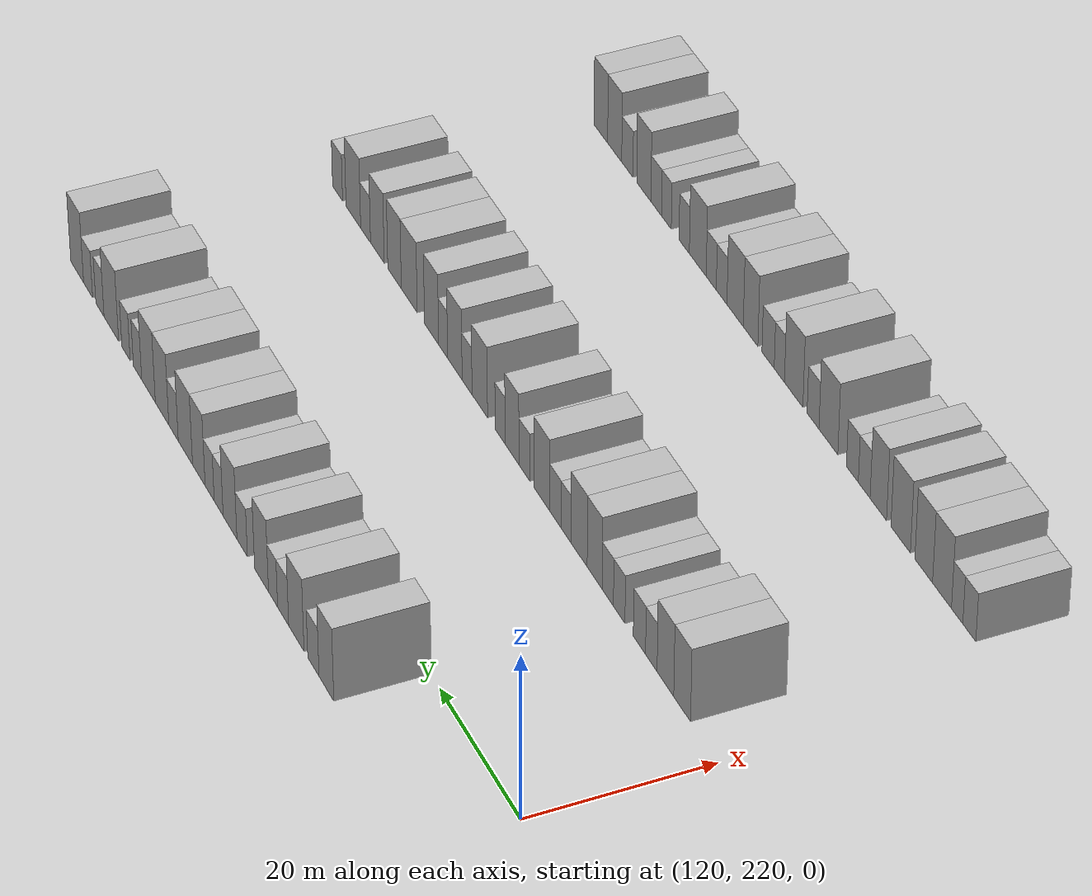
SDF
<sdf version="1.6">
 <world name="default">
  <model name="building_848">
   <static>1</static>
   <pose>115.0000 244.2207 0 0.000000 0.000000 0.000000</pose>
   <link name="link">
    <pose>0 0 4.50 0 0 0</pose>
    <collision name="collision"><geometry><box><size>10.0000 3.8782 9.0000</size></box></geometry></collision>
    <visual name="visual">
     <cast_shadows>0</cast_shadows>
     <geometry><box><size>10.0000 3.8782 9.0000</size></box></geometry>
     <material>
      <script>
       <uri>model://HANNAS_wall/materials/scripts</uri>
       <uri>model://HANNAS_wall/materials/textures</uri>
       <name>vrc/HANNAS_wall</name>
      </script>
     </material>
    </visual>
   </link>
  </model>
  <model name="building_849">
   <static>1</static>
   <pose>115.0000 247.6461 0 0.000000 0.000000 0.000000</pose>
   <link name="link">
    <pose>0 0 3.00 0 0 0</pose>
    <collision name="collision"><geometry><box><size>10.0000 2.9726 6.0000</size></box></geometry></collision>
    <visual name="visual">
     <cast_shadows>0</cast_shadows>
     <geometry><box><size>10.0000 2.9726 6.0000</size></box></geometry>
     <material>
      <script>
       <uri>model://HANNAS_wall/materials/scripts</uri>
       <uri>model://HANNAS_wall/materials/textures</uri>
       <name>vrc/HANNAS_wall</name>
      </script>
     </material>
    </visual>
   </link>
  </model>
  <model name="building_850">
   <static>1</static>
   <pose>115.0000 252.1877 0 0.000000 0.000000 0.000000</pose>
   <link name="link">
    <pose>0 0 4.50 0 0 0</pose>
    <collision name="collision"><geometry><box><size>10.0000 4.1106 9.0000</size></box></geometry></collision>
    <visual name="visual">
     <cast_shadows>0</cast_shadows>
     <geometry><box><size>10.0000 4.1106 9.0000</size></box></geometry>
     <material>
      <script>
       <uri>model://HANNAS_wall/materials/scripts</uri>
       <uri>model://HANNAS_wall/materials/textures</uri>
       <name>vrc/HANNAS_wall</name>
      </script>
     </material>
    </visual>
   </link>
  </model>
  <model name="building_851">
   <static>1</static>
   <pose>115.0000 255.7371 0 0.000000 0.000000 0.000000</pose>
   <link name="link">
    <pose>0 0 3.00 0 0 0</pose>
    <collision name="collision"><geometry><box><size>10.0000 2.9881 6.0000</size></box></geometry></collision>
    <visual name="visual">
     <cast_shadows>0</cast_shadows>
     <geometry><box><size>10.0000 2.9881 6.0000</size></box></geometry>
     <material>
      <script>
       <uri>model://HANNAS_wall/materials/scripts</uri>
       <uri>model://HANNAS_wall/materials/textures</uri>
       <name>vrc/HANNAS_wall</name>
      </script>
     </material>
    </visual>
   </link>
  </model>
  <model name="building_852">
   <static>1</static>
   <pose>115.0000 258.4723 0 0.000000 0.000000 0.000000</pose>
   <link name="link">
    <pose>0 0 3.00 0 0 0</pose>
    <collision name="collision"><geometry><box><size>10.0000 2.4824 6.0000</size></box></geometry></collision>
    <visual name="visual">
     <cast_shadows>0</cast_shadows>
     <geometry><box><size>10.0000 2.4824 6.0000</size></box></geometry>
     <material>
      <script>
       <uri>model://HANNAS_wall/materials/scripts</uri>
       <uri>model://HANNAS_wall/materials/textures</uri>
       <name>vrc/HANNAS_wall</name>
      </script>
     </material>
    </visual>
   </link>
  </model>
  <model name="building_853">
   <static>1</static>
   <pose>115.0000 261.6163 0 0.000000 0.000000 0.000000</pose>
   <link name="link">
    <pose>0 0 4.50 0 0 0</pose>
    <collision name="collision"><geometry><box><size>10.0000 3.8056 9.0000</size></box></geometry></collision>
    <visual name="visual">
     <cast_shadows>0</cast_shadows>
     <geometry><box><size>10.0000 3.8056 9.0000</size></box></geometry>
     <material>
      <script>
       <uri>model://HANNAS_wall/materials/scripts</uri>
       <uri>model://HANNAS_wall/materials/textures</uri>
       <name>vrc/HANNAS_wall</name>
      </script>
     </material>
    </visual>
   </link>
  </model>
  <model name="building_854">
   <static>1</static>
   <pose>115.0000 266.9778 0 0.000000 0.000000 0.000000</pose>
   <link name="link">
    <pose>0 0 3.00 0 0 0</pose>
    <collision name="collision"><geometry><box><size>10.0000 2.9174 6.0000</size></box></geometry></collision>
    <visual name="visual">
     <cast_shadows>0</cast_shadows>
     <geometry><box><size>10.0000 2.9174 6.0000</size></box></geometry>
     <material>
      <script>
       <uri>model://HANNAS_wall/materials/scripts</uri>
       <uri>model://HANNAS_wall/materials/textures</uri>
       <name>vrc/HANNAS_wall</name>
      </script>
     </material>
    </visual>
   </link>
  </model>
  <model name="building_855">
   <static>1</static>
   <pose>115.0000 270.3739 0 0.000000 0.000000 0.000000</pose>
   <link name="link">
    <pose>0 0 4.50 0 0 0</pose>
    <collision name="collision"><geometry><box><size>10.0000 3.8749 9.0000</size></box></geometry></collision>
    <visual name="visual">
     <cast_shadows>0</cast_shadows>
     <geometry><box><size>10.0000 3.8749 9.0000</size></box></geometry>
     <material>
      <script>
       <uri>model://HANNAS_wall/materials/scripts</uri>
       <uri>model://HANNAS_wall/materials/textures</uri>
       <name>vrc/HANNAS_wall</name>
      </script>
     </material>
    </visual>
   </link>
  </model>
  <model name="building_856">
   <static>1</static>
   <pose>115.0000 273.5692 0 0.000000 0.000000 0.000000</pose>
   <link name="link">
    <pose>0 0 3.00 0 0 0</pose>
    <collision name="collision"><geometry><box><size>10.0000 2.5157 6.0000</size></box></geometry></collision>
    <visual name="visual">
     <cast_shadows>0</cast_shadows>
     <geometry><box><size>10.0000 2.5157 6.0000</size></box></geometry>
     <material>
      <script>
       <uri>model://HANNAS_wall/materials/scripts</uri>
       <uri>model://HANNAS_wall/materials/textures</uri>
       <name>vrc/HANNAS_wall</name>
      </script>
     </material>
    </visual>
   </link>
  </model>
  <model name="building_857">
   <static>1</static>
   <pose>115.0000 276.1276 0 0.000000 0.000000 0.000000</pose>
   <link name="link">
    <pose>0 0 3.00 0 0 0</pose>
    <collision name="collision"><geometry><box><size>10.0000 2.6011 6.0000</size></box></geometry></collision>
    <visual name="visual">
     <cast_shadows>0</cast_shadows>
     <geometry><box><size>10.0000 2.6011 6.0000</size></box></geometry>
     <material>
      <script>
       <uri>model://HANNAS_wall/materials/scripts</uri>
       <uri>model://HANNAS_wall/materials/textures</uri>
       <name>vrc/HANNAS_wall</name>
      </script>
     </material>
    </visual>
   </link>
  </model>
  <model name="building_858">
   <static>1</static>
   <pose>115.0000 279.2333 0 0.000000 0.000000 0.000000</pose>
   <link name="link">
    <pose>0 0 4.50 0 0 0</pose>
    <collision name="collision"><geometry><box><size>10.0000 3.6104 9.0000</size></box></geometry></collision>
    <visual name="visual">
     <cast_shadows>0</cast_shadows>
     <geometry><box><size>10.0000 3.6104 9.0000</size></box></geometry>
     <material>
      <script>
       <uri>model://HANNAS_wall/materials/scripts</uri>
       <uri>model://HANNAS_wall/materials/textures</uri>
       <name>vrc/HANNAS_wall</name>
      </script>
     </material>
    </visual>
   </link>
  </model>
  <model name="building_859">
   <static>1</static>
   <pose>115.0000 283.1141 0 0.000000 0.000000 0.000000</pose>
   <link name="link">
    <pose>0 0 4.50 0 0 0</pose>
    <collision name="collision"><geometry><box><size>10.0000 4.1512 9.0000</size></box></geometry></collision>
    <visual name="visual">
     <cast_shadows>0</cast_shadows>
     <geometry><box><size>10.0000 4.1512 9.0000</size></box></geometry>
     <material>
      <script>
       <uri>model://HANNAS_wall/materials/scripts</uri>
       <uri>model://HANNAS_wall/materials/textures</uri>
       <name>vrc/HANNAS_wall</name>
      </script>
     </material>
    </visual>
   </link>
  </model>
  <model name="building_860">
   <static>1</static>
   <pose>115.0000 286.5682 0 0.000000 0.000000 0.000000</pose>
   <link name="link">
    <pose>0 0 3.00 0 0 0</pose>
    <collision name="collision"><geometry><box><size>10.0000 2.7570 6.0000</size></box></geometry></collision>
    <visual name="visual">
     <cast_shadows>0</cast_shadows>
     <geometry><box><size>10.0000 2.7570 6.0000</size></box></geometry>
     <material>
      <script>
       <uri>model://HANNAS_wall/materials/scripts</uri>
       <uri>model://HANNAS_wall/materials/textures</uri>
       <name>vrc/HANNAS_wall</name>
      </script>
     </material>
    </visual>
   </link>
  </model>
  <model name="building_861">
   <static>1</static>
   <pose>115.0000 289.9339 0 0.000000 0.000000 0.000000</pose>
   <link name="link">
    <pose>0 0 4.50 0 0 0</pose>
    <collision name="collision"><geometry><box><size>10.0000 3.9745 9.0000</size></box></geometry></collision>
    <visual name="visual">
     <cast_shadows>0</cast_shadows>
     <geometry><box><size>10.0000 3.9745 9.0000</size></box></geometry>
     <material>
      <script>
       <uri>model://HANNAS_wall/materials/scripts</uri>
       <uri>model://HANNAS_wall/materials/textures</uri>
       <name>vrc/HANNAS_wall</name>
      </script>
     </material>
    </visual>
   </link>
  </model>
  <model name="building_862">
   <static>1</static>
   <pose>115.0000 293.9550 0 0.000000 0.000000 0.000000</pose>
   <link name="link">
    <pose>0 0 4.50 0 0 0</pose>
    <collision name="collision"><geometry><box><size>10.0000 4.0678 9.0000</size></box></geometry></collision>
    <visual name="visual">
     <cast_shadows>0</cast_shadows>
     <geometry><box><size>10.0000 4.0678 9.0000</size></box></geometry>
     <material>
      <script>
       <uri>model://HANNAS_wall/materials/scripts</uri>
       <uri>model://HANNAS_wall/materials/textures</uri>
       <name>vrc/HANNAS_wall</name>
      </script>
     </material>
    </visual>
   </link>
  </model>
  <model name="building_863">
   <static>1</static>
   <pose>115.0000 297.2234 0 0.000000 0.000000 0.000000</pose>
   <link name="link">
    <pose>0 0 3.00 0 0 0</pose>
    <collision name="collision"><geometry><box><size>10.0000 2.4688 6.0000</size></box></geometry></collision>
    <visual name="visual">
     <cast_shadows>0</cast_shadows>
     <geometry><box><size>10.0000 2.4688 6.0000</size></box></geometry>
     <material>
      <script>
       <uri>model://HANNAS_wall/materials/scripts</uri>
       <uri>model://HANNAS_wall/materials/textures</uri>
       <name>vrc/HANNAS_wall</name>
      </script>
     </material>
    </visual>
   </link>
  </model>
  <model name="building_864">
   <static>1</static>
   <pose>115.0000 300.7084 0 0.000000 0.000000 0.000000</pose>
   <link name="link">
    <pose>0 0 3.00 0 0 0</pose>
    <collision name="collision"><geometry><box><size>10.0000 2.5013 6.0000</size></box></geometry></collision>
    <visual name="visual">
     <cast_shadows>0</cast_shadows>
     <geometry><box><size>10.0000 2.5013 6.0000</size></box></geometry>
     <material>
      <script>
       <uri>model://HANNAS_wall/materials/scripts</uri>
       <uri>model://HANNAS_wall/materials/textures</uri>
       <name>vrc/HANNAS_wall</name>
      </script>
     </material>
    </visual>
   </link>
  </model>
  <model name="building_865">
   <static>1</static>
   <pose>115.0000 305.1834 0 0.000000 0.000000 0.000000</pose>
   <link name="link">
    <pose>0 0 4.50 0 0 0</pose>
    <collision name="collision"><geometry><box><size>10.0000 4.4486 9.0000</size></box></geometry></collision>
    <visual name="visual">
     <cast_shadows>0</cast_shadows>
     <geometry><box><size>10.0000 4.4486 9.0000</size></box></geometry>
     <material>
      <script>
       <uri>model://HANNAS_wall/materials/scripts</uri>
       <uri>model://HANNAS_wall/materials/textures</uri>
       <name>vrc/HANNAS_wall</name>
      </script>
     </material>
    </visual>
   </link>
  </model>
  <model name="building_866">
   <static>1</static>
   <pose>115.0000 308.6751 0 0.000000 0.000000 0.000000</pose>
   <link name="link">
    <pose>0 0 3.00 0 0 0</pose>
    <collision name="collision"><geometry><box><size>10.0000 2.5350 6.0000</size></box></geometry></collision>
    <visual name="visual">
     <cast_shadows>0</cast_shadows>
     <geometry><box><size>10.0000 2.5350 6.0000</size></box></geometry>
     <material>
      <script>
       <uri>model://HANNAS_wall/materials/scripts</uri>
       <uri>model://HANNAS_wall/materials/textures</uri>
       <name>vrc/HANNAS_wall</name>
      </script>
     </material>
    </visual>
   </link>
  </model>
  <model name="building_867">
   <static>1</static>
   <pose>115.0000 312.3474 0 0.000000 0.000000 0.000000</pose>
   <link name="link">
    <pose>0 0 3.00 0 0 0</pose>
    <collision name="collision"><geometry><box><size>10.0000 2.8095 6.0000</size></box></geometry></collision>
    <visual name="visual">
     <cast_shadows>0</cast_shadows>
     <geometry><box><size>10.0000 2.8095 6.0000</size></box></geometry>
     <material>
      <script>
       <uri>model://HANNAS_wall/materials/scripts</uri>
       <uri>model://HANNAS_wall/materials/textures</uri>
       <name>vrc/HANNAS_wall</name>
      </script>
     </material>
    </visual>
   </link>
  </model>
  <model name="building_868">
   <static>1</static>
   <pose>115.0000 315.7511 0 0.000000 0.000000 0.000000</pose>
   <link name="link">
    <pose>0 0 4.50 0 0 0</pose>
    <collision name="collision"><geometry><box><size>10.0000 3.9978 9.0000</size></box></geometry></collision>
    <visual name="visual">
     <cast_shadows>0</cast_shadows>
     <geometry><box><size>10.0000 3.9978 9.0000</size></box></geometry>
     <material>
      <script>
       <uri>model://HANNAS_wall/materials/scripts</uri>
       <uri>model://HANNAS_wall/materials/textures</uri>
       <name>vrc/HANNAS_wall</name>
      </script>
     </material>
    </visual>
   </link>
  </model>
  <model name="building_1060">
   <static>1</static>
   <pose>145.0000 228.3017 0 0.000000 0.000000 0.000000</pose>
   <link name="link">
    <pose>0 0 4.50 0 0 0</pose>
    <collision name="collision"><geometry><box><size>10.0000 3.9201 9.0000</size></box></geometry></collision>
    <visual name="visual">
     <cast_shadows>0</cast_shadows>
     <geometry><box><size>10.0000 3.9201 9.0000</size></box></geometry>
     <material>
      <script>
       <uri>model://HANNAS_wall/materials/scripts</uri>
       <uri>model://HANNAS_wall/materials/textures</uri>
       <name>vrc/HANNAS_wall</name>
      </script>
     </material>
    </visual>
   </link>
  </model>
  <model name="building_1061">
   <static>1</static>
   <pose>145.0000 232.2187 0 0.000000 0.000000 0.000000</pose>
   <link name="link">
    <pose>0 0 4.50 0 0 0</pose>
    <collision name="collision"><geometry><box><size>10.0000 3.9140 9.0000</size></box></geometry></collision>
    <visual name="visual">
     <cast_shadows>0</cast_shadows>
     <geometry><box><size>10.0000 3.9140 9.0000</size></box></geometry>
     <material>
      <script>
       <uri>model://HANNAS_wall/materials/scripts</uri>
       <uri>model://HANNAS_wall/materials/textures</uri>
       <name>vrc/HANNAS_wall</name>
      </script>
     </material>
    </visual>
   </link>
  </model>
  <model name="building_1062">
   <static>1</static>
   <pose>145.0000 235.5470 0 0.000000 0.000000 0.000000</pose>
   <link name="link">
    <pose>0 0 3.00 0 0 0</pose>
    <collision name="collision"><geometry><box><size>10.0000 2.7426 6.0000</size></box></geometry></collision>
    <visual name="visual">
     <cast_shadows>0</cast_shadows>
     <geometry><box><size>10.0000 2.7426 6.0000</size></box></geometry>
     <material>
      <script>
       <uri>model://HANNAS_wall/materials/scripts</uri>
       <uri>model://HANNAS_wall/materials/textures</uri>
       <name>vrc/HANNAS_wall</name>
      </script>
     </material>
    </visual>
   </link>
  </model>
  <model name="building_1063">
   <static>1</static>
   <pose>145.0000 238.3834 0 0.000000 0.000000 0.000000</pose>
   <link name="link">
    <pose>0 0 3.00 0 0 0</pose>
    <collision name="collision"><geometry><box><size>10.0000 2.9302 6.0000</size></box></geometry></collision>
    <visual name="visual">
     <cast_shadows>0</cast_shadows>
     <geometry><box><size>10.0000 2.9302 6.0000</size></box></geometry>
     <material>
      <script>
       <uri>model://HANNAS_wall/materials/scripts</uri>
       <uri>model://HANNAS_wall/materials/textures</uri>
       <name>vrc/HANNAS_wall</name>
      </script>
     </material>
    </visual>
   </link>
  </model>
  <model name="building_1064">
   <static>1</static>
   <pose>145.0000 243.2452 0 0.000000 0.000000 0.000000</pose>
   <link name="link">
    <pose>0 0 3.00 0 0 0</pose>
    <collision name="collision"><geometry><box><size>10.0000 2.7933 6.0000</size></box></geometry></collision>
    <visual name="visual">
     <cast_shadows>0</cast_shadows>
     <geometry><box><size>10.0000 2.7933 6.0000</size></box></geometry>
     <material>
      <script>
       <uri>model://HANNAS_wall/materials/scripts</uri>
       <uri>model://HANNAS_wall/materials/textures</uri>
       <name>vrc/HANNAS_wall</name>
      </script>
     </material>
    </visual>
   </link>
  </model>
  <model name="building_1065">
   <static>1</static>
   <pose>145.0000 246.0279 0 0.000000 0.000000 0.000000</pose>
   <link name="link">
    <pose>0 0 3.00 0 0 0</pose>
    <collision name="collision"><geometry><box><size>10.0000 2.7721 6.0000</size></box></geometry></collision>
    <visual name="visual">
     <cast_shadows>0</cast_shadows>
     <geometry><box><size>10.0000 2.7721 6.0000</size></box></geometry>
     <material>
      <script>
       <uri>model://HANNAS_wall/materials/scripts</uri>
       <uri>model://HANNAS_wall/materials/textures</uri>
       <name>vrc/HANNAS_wall</name>
      </script>
     </material>
    </visual>
   </link>
  </model>
  <model name="building_1066">
   <static>1</static>
   <pose>145.0000 249.2485 0 0.000000 0.000000 0.000000</pose>
   <link name="link">
    <pose>0 0 4.50 0 0 0</pose>
    <collision name="collision"><geometry><box><size>10.0000 3.6691 9.0000</size></box></geometry></collision>
    <visual name="visual">
     <cast_shadows>0</cast_shadows>
     <geometry><box><size>10.0000 3.6691 9.0000</size></box></geometry>
     <material>
      <script>
       <uri>model://HANNAS_wall/materials/scripts</uri>
       <uri>model://HANNAS_wall/materials/textures</uri>
       <name>vrc/HANNAS_wall</name>
      </script>
     </material>
    </visual>
   </link>
  </model>
  <model name="building_1067">
   <static>1</static>
   <pose>145.0000 253.0769 0 0.000000 0.000000 0.000000</pose>
   <link name="link">
    <pose>0 0 4.50 0 0 0</pose>
    <collision name="collision"><geometry><box><size>10.0000 3.9878 9.0000</size></box></geometry></collision>
    <visual name="visual">
     <cast_shadows>0</cast_shadows>
     <geometry><box><size>10.0000 3.9878 9.0000</size></box></geometry>
     <material>
      <script>
       <uri>model://HANNAS_wall/materials/scripts</uri>
       <uri>model://HANNAS_wall/materials/textures</uri>
       <name>vrc/HANNAS_wall</name>
      </script>
     </material>
    </visual>
   </link>
  </model>
  <model name="building_1068">
   <static>1</static>
   <pose>145.0000 256.2872 0 0.000000 0.000000 0.000000</pose>
   <link name="link">
    <pose>0 0 3.00 0 0 0</pose>
    <collision name="collision"><geometry><box><size>10.0000 2.4328 6.0000</size></box></geometry></collision>
    <visual name="visual">
     <cast_shadows>0</cast_shadows>
     <geometry><box><size>10.0000 2.4328 6.0000</size></box></geometry>
     <material>
      <script>
       <uri>model://HANNAS_wall/materials/scripts</uri>
       <uri>model://HANNAS_wall/materials/textures</uri>
       <name>vrc/HANNAS_wall</name>
      </script>
     </material>
    </visual>
   </link>
  </model>
  <model name="building_1069">
   <static>1</static>
   <pose>145.0000 258.9683 0 0.000000 0.000000 0.000000</pose>
   <link name="link">
    <pose>0 0 3.00 0 0 0</pose>
    <collision name="collision"><geometry><box><size>10.0000 2.9296 6.0000</size></box></geometry></collision>
    <visual name="visual">
     <cast_shadows>0</cast_shadows>
     <geometry><box><size>10.0000 2.9296 6.0000</size></box></geometry>
     <material>
      <script>
       <uri>model://HANNAS_wall/materials/scripts</uri>
       <uri>model://HANNAS_wall/materials/textures</uri>
       <name>vrc/HANNAS_wall</name>
      </script>
     </material>
    </visual>
   </link>
  </model>
  <model name="building_1070">
   <static>1</static>
   <pose>145.0000 262.4605 0 0.000000 0.000000 0.000000</pose>
   <link name="link">
    <pose>0 0 4.50 0 0 0</pose>
    <collision name="collision"><geometry><box><size>10.0000 4.0547 9.0000</size></box></geometry></collision>
    <visual name="visual">
     <cast_shadows>0</cast_shadows>
     <geometry><box><size>10.0000 4.0547 9.0000</size></box></geometry>
     <material>
      <script>
       <uri>model://HANNAS_wall/materials/scripts</uri>
       <uri>model://HANNAS_wall/materials/textures</uri>
       <name>vrc/HANNAS_wall</name>
      </script>
     </material>
    </visual>
   </link>
  </model>
  <model name="building_1071">
   <static>1</static>
   <pose>145.0000 266.8948 0 0.000000 0.000000 0.000000</pose>
   <link name="link">
    <pose>0 0 3.00 0 0 0</pose>
    <collision name="collision"><geometry><box><size>10.0000 2.8139 6.0000</size></box></geometry></collision>
    <visual name="visual">
     <cast_shadows>0</cast_shadows>
     <geometry><box><size>10.0000 2.8139 6.0000</size></box></geometry>
     <material>
      <script>
       <uri>model://HANNAS_wall/materials/scripts</uri>
       <uri>model://HANNAS_wall/materials/textures</uri>
       <name>vrc/HANNAS_wall</name>
      </script>
     </material>
    </visual>
   </link>
  </model>
  <model name="building_1072">
   <static>1</static>
   <pose>145.0000 270.1035 0 0.000000 0.000000 0.000000</pose>
   <link name="link">
    <pose>0 0 4.50 0 0 0</pose>
    <collision name="collision"><geometry><box><size>10.0000 3.6037 9.0000</size></box></geometry></collision>
    <visual name="visual">
     <cast_shadows>0</cast_shadows>
     <geometry><box><size>10.0000 3.6037 9.0000</size></box></geometry>
     <material>
      <script>
       <uri>model://HANNAS_wall/materials/scripts</uri>
       <uri>model://HANNAS_wall/materials/textures</uri>
       <name>vrc/HANNAS_wall</name>
      </script>
     </material>
    </visual>
   </link>
  </model>
  <model name="building_1073">
   <static>1</static>
   <pose>145.0000 273.2037 0 0.000000 0.000000 0.000000</pose>
   <link name="link">
    <pose>0 0 3.00 0 0 0</pose>
    <collision name="collision"><geometry><box><size>10.0000 2.5967 6.0000</size></box></geometry></collision>
    <visual name="visual">
     <cast_shadows>0</cast_shadows>
     <geometry><box><size>10.0000 2.5967 6.0000</size></box></geometry>
     <material>
      <script>
       <uri>model://HANNAS_wall/materials/scripts</uri>
       <uri>model://HANNAS_wall/materials/textures</uri>
       <name>vrc/HANNAS_wall</name>
      </script>
     </material>
    </visual>
   </link>
  </model>
  <model name="building_1074">
   <static>1</static>
   <pose>145.0000 278.5564 0 0.000000 0.000000 0.000000</pose>
   <link name="link">
    <pose>0 0 4.50 0 0 0</pose>
    <collision name="collision"><geometry><box><size>10.0000 4.1087 9.0000</size></box></geometry></collision>
    <visual name="visual">
     <cast_shadows>0</cast_shadows>
     <geometry><box><size>10.0000 4.1087 9.0000</size></box></geometry>
     <material>
      <script>
       <uri>model://HANNAS_wall/materials/scripts</uri>
       <uri>model://HANNAS_wall/materials/textures</uri>
       <name>vrc/HANNAS_wall</name>
      </script>
     </material>
    </visual>
   </link>
  </model>
  <model name="building_1075">
   <static>1</static>
   <pose>145.0000 281.9324 0 0.000000 0.000000 0.000000</pose>
   <link name="link">
    <pose>0 0 3.00 0 0 0</pose>
    <collision name="collision"><geometry><box><size>10.0000 2.6433 6.0000</size></box></geometry></collision>
    <visual name="visual">
     <cast_shadows>0</cast_shadows>
     <geometry><box><size>10.0000 2.6433 6.0000</size></box></geometry>
     <material>
      <script>
       <uri>model://HANNAS_wall/materials/scripts</uri>
       <uri>model://HANNAS_wall/materials/textures</uri>
       <name>vrc/HANNAS_wall</name>
      </script>
     </material>
    </visual>
   </link>
  </model>
  <model name="building_1076">
   <static>1</static>
   <pose>145.0000 285.2062 0 0.000000 0.000000 0.000000</pose>
   <link name="link">
    <pose>0 0 4.50 0 0 0</pose>
    <collision name="collision"><geometry><box><size>10.0000 3.9044 9.0000</size></box></geometry></collision>
    <visual name="visual">
     <cast_shadows>0</cast_shadows>
     <geometry><box><size>10.0000 3.9044 9.0000</size></box></geometry>
     <material>
      <script>
       <uri>model://HANNAS_wall/materials/scripts</uri>
       <uri>model://HANNAS_wall/materials/textures</uri>
       <name>vrc/HANNAS_wall</name>
      </script>
     </material>
    </visual>
   </link>
  </model>
  <model name="building_1077">
   <static>1</static>
   <pose>145.0000 288.3752 0 0.000000 0.000000 0.000000</pose>
   <link name="link">
    <pose>0 0 3.00 0 0 0</pose>
    <collision name="collision"><geometry><box><size>10.0000 2.4335 6.0000</size></box></geometry></collision>
    <visual name="visual">
     <cast_shadows>0</cast_shadows>
     <geometry><box><size>10.0000 2.4335 6.0000</size></box></geometry>
     <material>
      <script>
       <uri>model://HANNAS_wall/materials/scripts</uri>
       <uri>model://HANNAS_wall/materials/textures</uri>
       <name>vrc/HANNAS_wall</name>
      </script>
     </material>
    </visual>
   </link>
  </model>
  <model name="building_1078">
   <static>1</static>
   <pose>145.0000 291.5195 0 0.000000 0.000000 0.000000</pose>
   <link name="link">
    <pose>0 0 4.50 0 0 0</pose>
    <collision name="collision"><geometry><box><size>10.0000 3.8552 9.0000</size></box></geometry></collision>
    <visual name="visual">
     <cast_shadows>0</cast_shadows>
     <geometry><box><size>10.0000 3.8552 9.0000</size></box></geometry>
     <material>
      <script>
       <uri>model://HANNAS_wall/materials/scripts</uri>
       <uri>model://HANNAS_wall/materials/textures</uri>
       <name>vrc/HANNAS_wall</name>
      </script>
     </material>
    </visual>
   </link>
  </model>
  <model name="building_1079">
   <static>1</static>
   <pose>145.0000 297.6555 0 0.000000 0.000000 0.000000</pose>
   <link name="link">
    <pose>0 0 4.50 0 0 0</pose>
    <collision name="collision"><geometry><box><size>10.0000 4.4167 9.0000</size></box></geometry></collision>
    <visual name="visual">
     <cast_shadows>0</cast_shadows>
     <geometry><box><size>10.0000 4.4167 9.0000</size></box></geometry>
     <material>
      <script>
       <uri>model://HANNAS_wall/materials/scripts</uri>
       <uri>model://HANNAS_wall/materials/textures</uri>
       <name>vrc/HANNAS_wall</name>
      </script>
     </material>
    </visual>
   </link>
  </model>
  <model name="building_1080">
   <static>1</static>
   <pose>145.0000 301.7551 0 0.000000 0.000000 0.000000</pose>
   <link name="link">
    <pose>0 0 4.50 0 0 0</pose>
    <collision name="collision"><geometry><box><size>10.0000 3.7826 9.0000</size></box></geometry></collision>
    <visual name="visual">
     <cast_shadows>0</cast_shadows>
     <geometry><box><size>10.0000 3.7826 9.0000</size></box></geometry>
     <material>
      <script>
       <uri>model://HANNAS_wall/materials/scripts</uri>
       <uri>model://HANNAS_wall/materials/textures</uri>
       <name>vrc/HANNAS_wall</name>
      </script>
     </material>
    </visual>
   </link>
  </model>
  <model name="building_1081">
   <static>1</static>
   <pose>145.0000 306.5948 0 0.000000 0.000000 0.000000</pose>
   <link name="link">
    <pose>0 0 4.50 0 0 0</pose>
    <collision name="collision"><geometry><box><size>10.0000 3.8967 9.0000</size></box></geometry></collision>
    <visual name="visual">
     <cast_shadows>0</cast_shadows>
     <geometry><box><size>10.0000 3.8967 9.0000</size></box></geometry>
     <material>
      <script>
       <uri>model://HANNAS_wall/materials/scripts</uri>
       <uri>model://HANNAS_wall/materials/textures</uri>
       <name>vrc/HANNAS_wall</name>
      </script>
     </material>
    </visual>
   </link>
  </model>
  <model name="building_1082">
   <static>1</static>
   <pose>145.0000 309.9485 0 0.000000 0.000000 0.000000</pose>
   <link name="link">
    <pose>0 0 3.00 0 0 0</pose>
    <collision name="collision"><geometry><box><size>10.0000 2.8108 6.0000</size></box></geometry></collision>
    <visual name="visual">
     <cast_shadows>0</cast_shadows>
     <geometry><box><size>10.0000 2.8108 6.0000</size></box></geometry>
     <material>
      <script>
       <uri>model://HANNAS_wall/materials/scripts</uri>
       <uri>model://HANNAS_wall/materials/textures</uri>
       <name>vrc/HANNAS_wall</name>
      </script>
     </material>
    </visual>
   </link>
  </model>
  <model name="building_1083">
   <static>1</static>
   <pose>145.0000 313.4647 0 0.000000 0.000000 0.000000</pose>
   <link name="link">
    <pose>0 0 4.50 0 0 0</pose>
    <collision name="collision"><geometry><box><size>10.0000 4.2216 9.0000</size></box></geometry></collision>
    <visual name="visual">
     <cast_shadows>0</cast_shadows>
     <geometry><box><size>10.0000 4.2216 9.0000</size></box></geometry>
     <material>
      <script>
       <uri>model://HANNAS_wall/materials/scripts</uri>
       <uri>model://HANNAS_wall/materials/textures</uri>
       <name>vrc/HANNAS_wall</name>
      </script>
     </material>
    </visual>
   </link>
  </model>
  <model name="building_1084">
   <static>1</static>
   <pose>145.0000 318.0241 0 0.000000 0.000000 0.000000</pose>
   <link name="link">
    <pose>0 0 3.00 0 0 0</pose>
    <collision name="collision"><geometry><box><size>10.0000 2.8973 6.0000</size></box></geometry></collision>
    <visual name="visual">
     <cast_shadows>0</cast_shadows>
     <geometry><box><size>10.0000 2.8973 6.0000</size></box></geometry>
     <material>
      <script>
       <uri>model://HANNAS_wall/materials/scripts</uri>
       <uri>model://HANNAS_wall/materials/textures</uri>
       <name>vrc/HANNAS_wall</name>
      </script>
     </material>
    </visual>
   </link>
  </model>
  <model name="building_1299">
   <static>1</static>
   <pose>175.0000 227.6438 0 0.000000 0.000000 0.000000</pose>
   <link name="link">
    <pose>0 0 3.00 0 0 0</pose>
    <collision name="collision"><geometry><box><size>10.0000 2.8380 6.0000</size></box></geometry></collision>
    <visual name="visual">
     <cast_shadows>0</cast_shadows>
     <geometry><box><size>10.0000 2.8380 6.0000</size></box></geometry>
     <material>
      <script>
       <uri>model://HANNAS_wall/materials/scripts</uri>
       <uri>model://HANNAS_wall/materials/textures</uri>
       <name>vrc/HANNAS_wall</name>
      </script>
     </material>
    </visual>
   </link>
  </model>
  <model name="building_1300">
   <static>1</static>
   <pose>175.0000 230.3026 0 0.000000 0.000000 0.000000</pose>
   <link name="link">
    <pose>0 0 3.00 0 0 0</pose>
    <collision name="collision"><geometry><box><size>10.0000 2.4796 6.0000</size></box></geometry></collision>
    <visual name="visual">
     <cast_shadows>0</cast_shadows>
     <geometry><box><size>10.0000 2.4796 6.0000</size></box></geometry>
     <material>
      <script>
       <uri>model://HANNAS_wall/materials/scripts</uri>
       <uri>model://HANNAS_wall/materials/textures</uri>
       <name>vrc/HANNAS_wall</name>
      </script>
     </material>
    </visual>
   </link>
  </model>
  <model name="building_1301">
   <static>1</static>
   <pose>175.0000 233.6339 0 0.000000 0.000000 0.000000</pose>
   <link name="link">
    <pose>0 0 4.50 0 0 0</pose>
    <collision name="collision"><geometry><box><size>10.0000 4.1831 9.0000</size></box></geometry></collision>
    <visual name="visual">
     <cast_shadows>0</cast_shadows>
     <geometry><box><size>10.0000 4.1831 9.0000</size></box></geometry>
     <material>
      <script>
       <uri>model://HANNAS_wall/materials/scripts</uri>
       <uri>model://HANNAS_wall/materials/textures</uri>
       <name>vrc/HANNAS_wall</name>
      </script>
     </material>
    </visual>
   </link>
  </model>
  <model name="building_1302">
   <static>1</static>
   <pose>175.0000 237.6975 0 0.000000 0.000000 0.000000</pose>
   <link name="link">
    <pose>0 0 4.50 0 0 0</pose>
    <collision name="collision"><geometry><box><size>10.0000 3.9441 9.0000</size></box></geometry></collision>
    <visual name="visual">
     <cast_shadows>0</cast_shadows>
     <geometry><box><size>10.0000 3.9441 9.0000</size></box></geometry>
     <material>
      <script>
       <uri>model://HANNAS_wall/materials/scripts</uri>
       <uri>model://HANNAS_wall/materials/textures</uri>
       <name>vrc/HANNAS_wall</name>
      </script>
     </material>
    </visual>
   </link>
  </model>
  <model name="building_1303">
   <static>1</static>
   <pose>175.0000 242.8749 0 0.000000 0.000000 0.000000</pose>
   <link name="link">
    <pose>0 0 4.50 0 0 0</pose>
    <collision name="collision"><geometry><box><size>10.0000 4.4108 9.0000</size></box></geometry></collision>
    <visual name="visual">
     <cast_shadows>0</cast_shadows>
     <geometry><box><size>10.0000 4.4108 9.0000</size></box></geometry>
     <material>
      <script>
       <uri>model://HANNAS_wall/materials/scripts</uri>
       <uri>model://HANNAS_wall/materials/textures</uri>
       <name>vrc/HANNAS_wall</name>
      </script>
     </material>
    </visual>
   </link>
  </model>
  <model name="building_1304">
   <static>1</static>
   <pose>175.0000 247.9623 0 0.000000 0.000000 0.000000</pose>
   <link name="link">
    <pose>0 0 4.50 0 0 0</pose>
    <collision name="collision"><geometry><box><size>10.0000 3.7640 9.0000</size></box></geometry></collision>
    <visual name="visual">
     <cast_shadows>0</cast_shadows>
     <geometry><box><size>10.0000 3.7640 9.0000</size></box></geometry>
     <material>
      <script>
       <uri>model://HANNAS_wall/materials/scripts</uri>
       <uri>model://HANNAS_wall/materials/textures</uri>
       <name>vrc/HANNAS_wall</name>
      </script>
     </material>
    </visual>
   </link>
  </model>
  <model name="building_1305">
   <static>1</static>
   <pose>175.0000 251.2037 0 0.000000 0.000000 0.000000</pose>
   <link name="link">
    <pose>0 0 3.00 0 0 0</pose>
    <collision name="collision"><geometry><box><size>10.0000 2.7188 6.0000</size></box></geometry></collision>
    <visual name="visual">
     <cast_shadows>0</cast_shadows>
     <geometry><box><size>10.0000 2.7188 6.0000</size></box></geometry>
     <material>
      <script>
       <uri>model://HANNAS_wall/materials/scripts</uri>
       <uri>model://HANNAS_wall/materials/textures</uri>
       <name>vrc/HANNAS_wall</name>
      </script>
     </material>
    </visual>
   </link>
  </model>
  <model name="building_1306">
   <static>1</static>
   <pose>175.0000 253.9482 0 0.000000 0.000000 0.000000</pose>
   <link name="link">
    <pose>0 0 3.00 0 0 0</pose>
    <collision name="collision"><geometry><box><size>10.0000 2.7704 6.0000</size></box></geometry></collision>
    <visual name="visual">
     <cast_shadows>0</cast_shadows>
     <geometry><box><size>10.0000 2.7704 6.0000</size></box></geometry>
     <material>
      <script>
       <uri>model://HANNAS_wall/materials/scripts</uri>
       <uri>model://HANNAS_wall/materials/textures</uri>
       <name>vrc/HANNAS_wall</name>
      </script>
     </material>
    </visual>
   </link>
  </model>
  <model name="building_1307">
   <static>1</static>
   <pose>175.0000 259.5580 0 0.000000 0.000000 0.000000</pose>
   <link name="link">
    <pose>0 0 4.50 0 0 0</pose>
    <collision name="collision"><geometry><box><size>10.0000 4.4493 9.0000</size></box></geometry></collision>
    <visual name="visual">
     <cast_shadows>0</cast_shadows>
     <geometry><box><size>10.0000 4.4493 9.0000</size></box></geometry>
     <material>
      <script>
       <uri>model://HANNAS_wall/materials/scripts</uri>
       <uri>model://HANNAS_wall/materials/textures</uri>
       <name>vrc/HANNAS_wall</name>
      </script>
     </material>
    </visual>
   </link>
  </model>
  <model name="building_1308">
   <static>1</static>
   <pose>175.0000 263.2012 0 0.000000 0.000000 0.000000</pose>
   <link name="link">
    <pose>0 0 3.00 0 0 0</pose>
    <collision name="collision"><geometry><box><size>10.0000 2.8370 6.0000</size></box></geometry></collision>
    <visual name="visual">
     <cast_shadows>0</cast_shadows>
     <geometry><box><size>10.0000 2.8370 6.0000</size></box></geometry>
     <material>
      <script>
       <uri>model://HANNAS_wall/materials/scripts</uri>
       <uri>model://HANNAS_wall/materials/textures</uri>
       <name>vrc/HANNAS_wall</name>
      </script>
     </material>
    </visual>
   </link>
  </model>
  <model name="building_1309">
   <static>1</static>
   <pose>175.0000 267.8418 0 0.000000 0.000000 0.000000</pose>
   <link name="link">
    <pose>0 0 4.50 0 0 0</pose>
    <collision name="collision"><geometry><box><size>10.0000 4.4443 9.0000</size></box></geometry></collision>
    <visual name="visual">
     <cast_shadows>0</cast_shadows>
     <geometry><box><size>10.0000 4.4443 9.0000</size></box></geometry>
     <material>
      <script>
       <uri>model://HANNAS_wall/materials/scripts</uri>
       <uri>model://HANNAS_wall/materials/textures</uri>
       <name>vrc/HANNAS_wall</name>
      </script>
     </material>
    </visual>
   </link>
  </model>
  <model name="building_1310">
   <static>1</static>
   <pose>175.0000 271.3064 0 0.000000 0.000000 0.000000</pose>
   <link name="link">
    <pose>0 0 3.00 0 0 0</pose>
    <collision name="collision"><geometry><box><size>10.0000 2.4850 6.0000</size></box></geometry></collision>
    <visual name="visual">
     <cast_shadows>0</cast_shadows>
     <geometry><box><size>10.0000 2.4850 6.0000</size></box></geometry>
     <material>
      <script>
       <uri>model://HANNAS_wall/materials/scripts</uri>
       <uri>model://HANNAS_wall/materials/textures</uri>
       <name>vrc/HANNAS_wall</name>
      </script>
     </material>
    </visual>
   </link>
  </model>
  <model name="building_1311">
   <static>1</static>
   <pose>175.0000 274.0458 0 0.000000 0.000000 0.000000</pose>
   <link name="link">
    <pose>0 0 3.00 0 0 0</pose>
    <collision name="collision"><geometry><box><size>10.0000 2.9937 6.0000</size></box></geometry></collision>
    <visual name="visual">
     <cast_shadows>0</cast_shadows>
     <geometry><box><size>10.0000 2.9937 6.0000</size></box></geometry>
     <material>
      <script>
       <uri>model://HANNAS_wall/materials/scripts</uri>
       <uri>model://HANNAS_wall/materials/textures</uri>
       <name>vrc/HANNAS_wall</name>
      </script>
     </material>
    </visual>
   </link>
  </model>
  <model name="building_1312">
   <static>1</static>
   <pose>175.0000 278.3514 0 0.000000 0.000000 0.000000</pose>
   <link name="link">
    <pose>0 0 4.50 0 0 0</pose>
    <collision name="collision"><geometry><box><size>10.0000 3.6176 9.0000</size></box></geometry></collision>
    <visual name="visual">
     <cast_shadows>0</cast_shadows>
     <geometry><box><size>10.0000 3.6176 9.0000</size></box></geometry>
     <material>
      <script>
       <uri>model://HANNAS_wall/materials/scripts</uri>
       <uri>model://HANNAS_wall/materials/textures</uri>
       <name>vrc/HANNAS_wall</name>
      </script>
     </material>
    </visual>
   </link>
  </model>
  <model name="building_1313">
   <static>1</static>
   <pose>175.0000 282.1916 0 0.000000 0.000000 0.000000</pose>
   <link name="link">
    <pose>0 0 4.50 0 0 0</pose>
    <collision name="collision"><geometry><box><size>10.0000 4.0628 9.0000</size></box></geometry></collision>
    <visual name="visual">
     <cast_shadows>0</cast_shadows>
     <geometry><box><size>10.0000 4.0628 9.0000</size></box></geometry>
     <material>
      <script>
       <uri>model://HANNAS_wall/materials/scripts</uri>
       <uri>model://HANNAS_wall/materials/textures</uri>
       <name>vrc/HANNAS_wall</name>
      </script>
     </material>
    </visual>
   </link>
  </model>
  <model name="building_1314">
   <static>1</static>
   <pose>175.0000 285.5635 0 0.000000 0.000000 0.000000</pose>
   <link name="link">
    <pose>0 0 3.00 0 0 0</pose>
    <collision name="collision"><geometry><box><size>10.0000 2.6810 6.0000</size></box></geometry></collision>
    <visual name="visual">
     <cast_shadows>0</cast_shadows>
     <geometry><box><size>10.0000 2.6810 6.0000</size></box></geometry>
     <material>
      <script>
       <uri>model://HANNAS_wall/materials/scripts</uri>
       <uri>model://HANNAS_wall/materials/textures</uri>
       <name>vrc/HANNAS_wall</name>
      </script>
     </material>
    </visual>
   </link>
  </model>
  <model name="building_1315">
   <static>1</static>
   <pose>175.0000 288.1858 0 0.000000 0.000000 0.000000</pose>
   <link name="link">
    <pose>0 0 3.00 0 0 0</pose>
    <collision name="collision"><geometry><box><size>10.0000 2.5636 6.0000</size></box></geometry></collision>
    <visual name="visual">
     <cast_shadows>0</cast_shadows>
     <geometry><box><size>10.0000 2.5636 6.0000</size></box></geometry>
     <material>
      <script>
       <uri>model://HANNAS_wall/materials/scripts</uri>
       <uri>model://HANNAS_wall/materials/textures</uri>
       <name>vrc/HANNAS_wall</name>
      </script>
     </material>
    </visual>
   </link>
  </model>
  <model name="building_1316">
   <static>1</static>
   <pose>175.0000 291.6105 0 0.000000 0.000000 0.000000</pose>
   <link name="link">
    <pose>0 0 4.50 0 0 0</pose>
    <collision name="collision"><geometry><box><size>10.0000 4.2858 9.0000</size></box></geometry></collision>
    <visual name="visual">
     <cast_shadows>0</cast_shadows>
     <geometry><box><size>10.0000 4.2858 9.0000</size></box></geometry>
     <material>
      <script>
       <uri>model://HANNAS_wall/materials/scripts</uri>
       <uri>model://HANNAS_wall/materials/textures</uri>
       <name>vrc/HANNAS_wall</name>
      </script>
     </material>
    </visual>
   </link>
  </model>
  <model name="building_1317">
   <static>1</static>
   <pose>175.0000 295.0800 0 0.000000 0.000000 0.000000</pose>
   <link name="link">
    <pose>0 0 3.00 0 0 0</pose>
    <collision name="collision"><geometry><box><size>10.0000 2.6532 6.0000</size></box></geometry></collision>
    <visual name="visual">
     <cast_shadows>0</cast_shadows>
     <geometry><box><size>10.0000 2.6532 6.0000</size></box></geometry>
     <material>
      <script>
       <uri>model://HANNAS_wall/materials/scripts</uri>
       <uri>model://HANNAS_wall/materials/textures</uri>
       <name>vrc/HANNAS_wall</name>
      </script>
     </material>
    </visual>
   </link>
  </model>
  <model name="building_1318">
   <static>1</static>
   <pose>175.0000 299.6759 0 0.000000 0.000000 0.000000</pose>
   <link name="link">
    <pose>0 0 3.00 0 0 0</pose>
    <collision name="collision"><geometry><box><size>10.0000 2.5386 6.0000</size></box></geometry></collision>
    <visual name="visual">
     <cast_shadows>0</cast_shadows>
     <geometry><box><size>10.0000 2.5386 6.0000</size></box></geometry>
     <material>
      <script>
       <uri>model://HANNAS_wall/materials/scripts</uri>
       <uri>model://HANNAS_wall/materials/textures</uri>
       <name>vrc/HANNAS_wall</name>
      </script>
     </material>
    </visual>
   </link>
  </model>
  <model name="building_1319">
   <static>1</static>
   <pose>175.0000 302.3339 0 0.000000 0.000000 0.000000</pose>
   <link name="link">
    <pose>0 0 3.00 0 0 0</pose>
    <collision name="collision"><geometry><box><size>10.0000 2.7774 6.0000</size></box></geometry></collision>
    <visual name="visual">
     <cast_shadows>0</cast_shadows>
     <geometry><box><size>10.0000 2.7774 6.0000</size></box></geometry>
     <material>
      <script>
       <uri>model://HANNAS_wall/materials/scripts</uri>
       <uri>model://HANNAS_wall/materials/textures</uri>
       <name>vrc/HANNAS_wall</name>
      </script>
     </material>
    </visual>
   </link>
  </model>
  <model name="building_1320">
   <static>1</static>
   <pose>175.0000 305.5877 0 0.000000 0.000000 0.000000</pose>
   <link name="link">
    <pose>0 0 4.50 0 0 0</pose>
    <collision name="collision"><geometry><box><size>10.0000 3.7302 9.0000</size></box></geometry></collision>
    <visual name="visual">
     <cast_shadows>0</cast_shadows>
     <geometry><box><size>10.0000 3.7302 9.0000</size></box></geometry>
     <material>
      <script>
       <uri>model://HANNAS_wall/materials/scripts</uri>
       <uri>model://HANNAS_wall/materials/textures</uri>
       <name>vrc/HANNAS_wall</name>
      </script>
     </material>
    </visual>
   </link>
  </model>
  <model name="building_1321">
   <static>1</static>
   <pose>175.0000 309.9526 0 0.000000 0.000000 0.000000</pose>
   <link name="link">
    <pose>0 0 3.00 0 0 0</pose>
    <collision name="collision"><geometry><box><size>10.0000 2.9997 6.0000</size></box></geometry></collision>
    <visual name="visual">
     <cast_shadows>0</cast_shadows>
     <geometry><box><size>10.0000 2.9997 6.0000</size></box></geometry>
     <material>
      <script>
       <uri>model://HANNAS_wall/materials/scripts</uri>
       <uri>model://HANNAS_wall/materials/textures</uri>
       <name>vrc/HANNAS_wall</name>
      </script>
     </material>
    </visual>
   </link>
  </model>
  <model name="building_1322">
   <static>1</static>
   <pose>175.0000 313.3375 0 0.000000 0.000000 0.000000</pose>
   <link name="link">
    <pose>0 0 4.50 0 0 0</pose>
    <collision name="collision"><geometry><box><size>10.0000 3.7701 9.0000</size></box></geometry></collision>
    <visual name="visual">
     <cast_shadows>0</cast_shadows>
     <geometry><box><size>10.0000 3.7701 9.0000</size></box></geometry>
     <material>
      <script>
       <uri>model://HANNAS_wall/materials/scripts</uri>
       <uri>model://HANNAS_wall/materials/textures</uri>
       <name>vrc/HANNAS_wall</name>
      </script>
     </material>
    </visual>
   </link>
  </model>
  <model name="building_1323">
   <static>1</static>
   <pose>175.0000 317.0340 0 0.000000 0.000000 0.000000</pose>
   <link name="link">
    <pose>0 0 4.50 0 0 0</pose>
    <collision name="collision"><geometry><box><size>10.0000 3.6227 9.0000</size></box></geometry></collision>
    <visual name="visual">
     <cast_shadows>0</cast_shadows>
     <geometry><box><size>10.0000 3.6227 9.0000</size></box></geometry>
     <material>
      <script>
       <uri>model://HANNAS_wall/materials/scripts</uri>
       <uri>model://HANNAS_wall/materials/textures</uri>
       <name>vrc/HANNAS_wall</name>
      </script>
     </material>
    </visual>
   </link>
  </model>
 </world>
</sdf>
